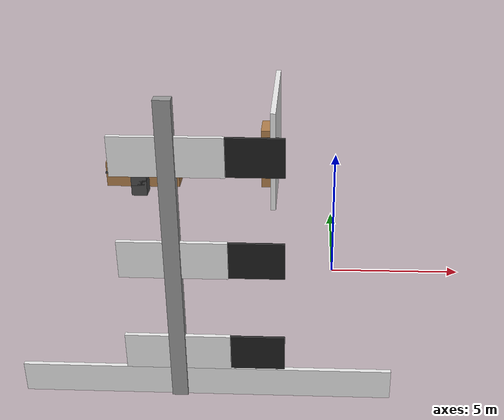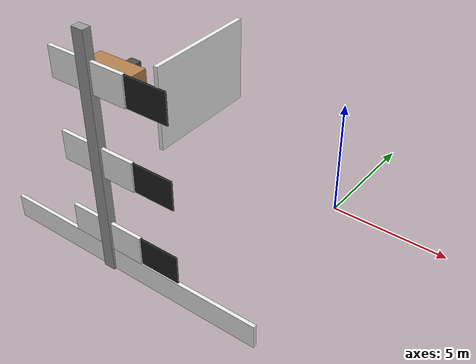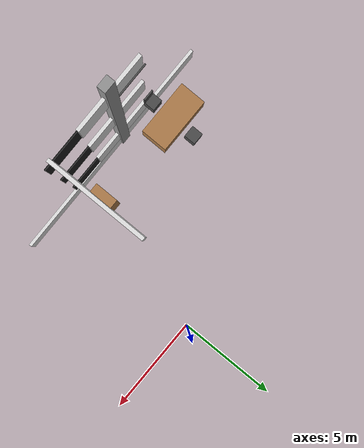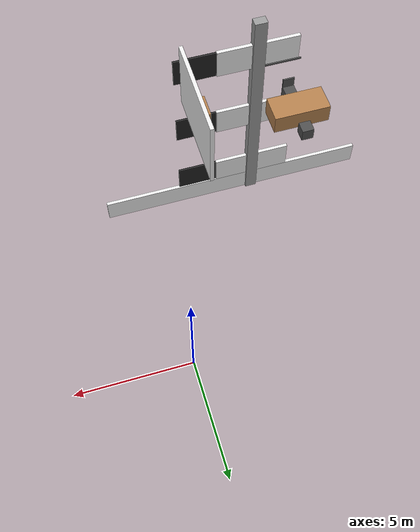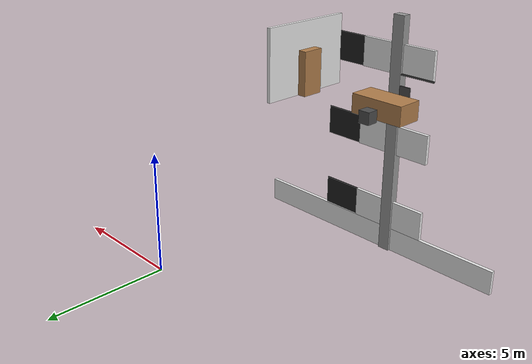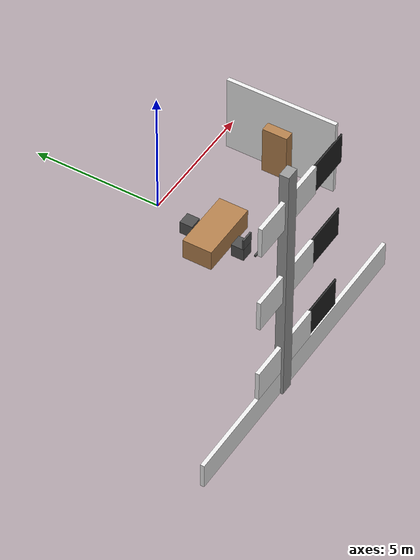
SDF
<sdf version="1.7">
 <world name="default">
  <model name="building_shell">
   <static>1</static>
   <link name="wSsb0_0">
    <pose>-4.15 -8 0.5 0 0 0</pose>
    <collision name="c"><geometry><box><size>11.7 0.15 1</size></box></geometry></collision>
    <visual name="v">
     <geometry><box><size>11.7 0.15 1</size></box></geometry>
     <material>
      <script><uri>file://media/materials/scripts/Gazebo.material</uri><name>Gazebo/White</name></script>
     </material>
    </visual>
   </link>
   <link name="wSm0_1">
    <pose>-5 -8 1.6 0 0 0</pose>
    <collision name="c"><geometry><box><size>3.3 0.15 1.2</size></box></geometry></collision>
    <visual name="v">
     <geometry><box><size>3.3 0.15 1.2</size></box></geometry>
     <material>
      <script><uri>file://media/materials/scripts/Gazebo.material</uri><name>Gazebo/White</name></script>
     </material>
    </visual>
   </link>
   <link name="wSg0_1">
    <pose>-2.5 -8 1.6 0 0 0</pose>
    <collision name="c"><geometry><box><size>1.7 0.05 1.2</size></box></geometry></collision>
    <visual name="v">
     <geometry><box><size>1.7 0.05 1.2</size></box></geometry>
     <material>
      <script><uri>file://media/materials/scripts/Gazebo.material</uri><name>Gazebo/FlatBlack</name></script>
     </material>
    </visual>
   </link>
   <link name="wSm1_1">
    <pose>-5 -8 4.9 0 0 0</pose>
    <collision name="c"><geometry><box><size>3.3 0.15 1.2</size></box></geometry></collision>
    <visual name="v">
     <geometry><box><size>3.3 0.15 1.2</size></box></geometry>
     <material>
      <script><uri>file://media/materials/scripts/Gazebo.material</uri><name>Gazebo/White</name></script>
     </material>
    </visual>
   </link>
   <link name="wSg1_1">
    <pose>-2.5 -8 4.9 0 0 0</pose>
    <collision name="c"><geometry><box><size>1.7 0.05 1.2</size></box></geometry></collision>
    <visual name="v">
     <geometry><box><size>1.7 0.05 1.2</size></box></geometry>
     <material>
      <script><uri>file://media/materials/scripts/Gazebo.material</uri><name>Gazebo/FlatBlack</name></script>
     </material>
    </visual>
   </link>
   <link name="wSm2_1">
    <pose>-5 -8 8.2 0 0 0</pose>
    <collision name="c"><geometry><box><size>3.3 0.15 1.2</size></box></geometry></collision>
    <visual name="v">
     <geometry><box><size>3.3 0.15 1.2</size></box></geometry>
     <material>
      <script><uri>file://media/materials/scripts/Gazebo.material</uri><name>Gazebo/White</name></script>
     </material>
    </visual>
   </link>
   <link name="wSg2_1">
    <pose>-2.5 -8 8.2 0 0 0</pose>
    <collision name="c"><geometry><box><size>1.7 0.05 1.2</size></box></geometry></collision>
    <visual name="v">
     <geometry><box><size>1.7 0.05 1.2</size></box></geometry>
     <material>
      <script><uri>file://media/materials/scripts/Gazebo.material</uri><name>Gazebo/FlatBlack</name></script>
     </material>
    </visual>
   </link>
   <link name="wSpil-5">
    <pose>-5 -8 4.95 0 0 0</pose>
    <collision name="c"><geometry><box><size>0.5 0.35 9.9</size></box></geometry></collision>
    <visual name="v">
     <geometry><box><size>0.5 0.35 9.9</size></box></geometry>
     <material>
      <script><uri>file://media/materials/scripts/Gazebo.material</uri><name>Gazebo/Grey</name></script>
     </material>
    </visual>
   </link>
  </model>
  <model name="building_L3">
   <static>1</static>
   <link name="w2_10_0">
    <pose>-2 -6 8.05 0 0 0</pose>
    <collision name="c"><geometry><box><size>0.15 4 2.9</size></box></geometry></collision>
    <visual name="v">
     <geometry><box><size>0.15 4 2.9</size></box></geometry>
     <material>
      <script><uri>file://media/materials/scripts/Gazebo.material</uri><name>Gazebo/White</name></script>
     </material>
    </visual>
   </link>
   <link name="f2_S1mtt">
    <pose>-6 -6 6.98 0 0 0</pose>
    <collision name="c"><geometry><box><size>2.2 1.05 0.76</size></box></geometry></collision>
    <visual name="v">
     <geometry><box><size>2.2 1.05 0.76</size></box></geometry>
     <material>
      <script><uri>file://media/materials/scripts/Gazebo.material</uri><name>Gazebo/Wood</name></script>
     </material>
    </visual>
   </link>
   <link name="f2_S1c2s">
    <pose>-6 -6.95 6.84 0 0 0</pose>
    <collision name="c"><geometry><box><size>0.46 0.46 0.48</size></box></geometry></collision>
    <visual name="v">
     <geometry><box><size>0.46 0.46 0.48</size></box></geometry>
     <material>
      <script><uri>file://media/materials/scripts/Gazebo.material</uri><name>Gazebo/DarkGrey</name></script>
     </material>
    </visual>
   </link>
   <link name="f2_S1c2b">
    <pose>-6 -7.15 7.2 0 0 0</pose>
    <collision name="c"><geometry><box><size>0.46 0.06 0.55</size></box></geometry></collision>
    <visual name="v">
     <geometry><box><size>0.46 0.06 0.55</size></box></geometry>
     <material>
      <script><uri>file://media/materials/scripts/Gazebo.material</uri><name>Gazebo/DarkGrey</name></script>
     </material>
    </visual>
   </link>
   <link name="f2_S1c3s">
    <pose>-6 -5.05 6.84 0 0 0</pose>
    <collision name="c"><geometry><box><size>0.46 0.46 0.48</size></box></geometry></collision>
    <visual name="v">
     <geometry><box><size>0.46 0.46 0.48</size></box></geometry>
     <material>
      <script><uri>file://media/materials/scripts/Gazebo.material</uri><name>Gazebo/DarkGrey</name></script>
     </material>
    </visual>
   </link>
   <link name="f2_S1bsf">
    <pose>-2.25 -6 7.5 0 0 0</pose>
    <collision name="c"><geometry><box><size>0.35 0.9 1.8</size></box></geometry></collision>
    <visual name="v">
     <geometry><box><size>0.35 0.9 1.8</size></box></geometry>
     <material>
      <script><uri>file://media/materials/scripts/Gazebo.material</uri><name>Gazebo/Wood</name></script>
     </material>
    </visual>
   </link>
   <link name="f2_S1bsb0">
    <pose>-2.25 -6 7.05 0 0 0</pose>
    <collision name="c"><geometry><box><size>0.28 0.8 0.32</size></box></geometry></collision>
    <visual name="v">
     <geometry><box><size>0.28 0.8 0.32</size></box></geometry>
     <material>
      <script><uri>file://media/materials/scripts/Gazebo.material</uri><name>Gazebo/Grey</name></script>
     </material>
    </visual>
   </link>
   <link name="f2_S1bsb1">
    <pose>-2.25 -6 7.55 0 0 0</pose>
    <collision name="c"><geometry><box><size>0.28 0.8 0.32</size></box></geometry></collision>
    <visual name="v">
     <geometry><box><size>0.28 0.8 0.32</size></box></geometry>
     <material>
      <script><uri>file://media/materials/scripts/Gazebo.material</uri><name>Gazebo/Grey</name></script>
     </material>
    </visual>
   </link>
   <link name="f2_S1bsb2">
    <pose>-2.25 -6 8.05 0 0 0</pose>
    <collision name="c"><geometry><box><size>0.28 0.8 0.32</size></box></geometry></collision>
    <visual name="v">
     <geometry><box><size>0.28 0.8 0.32</size></box></geometry>
     <material>
      <script><uri>file://media/materials/scripts/Gazebo.material</uri><name>Gazebo/Grey</name></script>
     </material>
    </visual>
   </link>
   <link name="f2_S1wbf">
    <pose>-6 -7.895 7.65 0 0 0</pose>
    <collision name="c"><geometry><box><size>1.5 0.06 0.06</size></box></geometry></collision>
    <visual name="v">
     <geometry><box><size>1.5 0.06 0.06</size></box></geometry>
     <material>
      <script><uri>file://media/materials/scripts/Gazebo.material</uri><name>Gazebo/DarkGrey</name></script>
     </material>
    </visual>
   </link>
  </model>
 </world>
</sdf>
